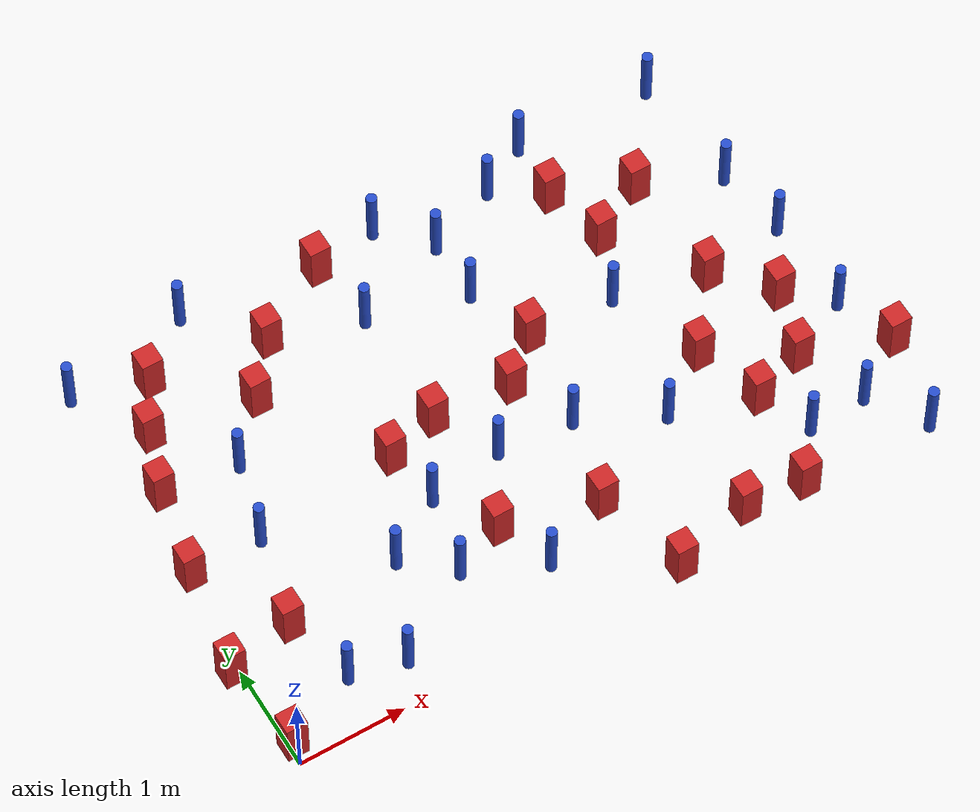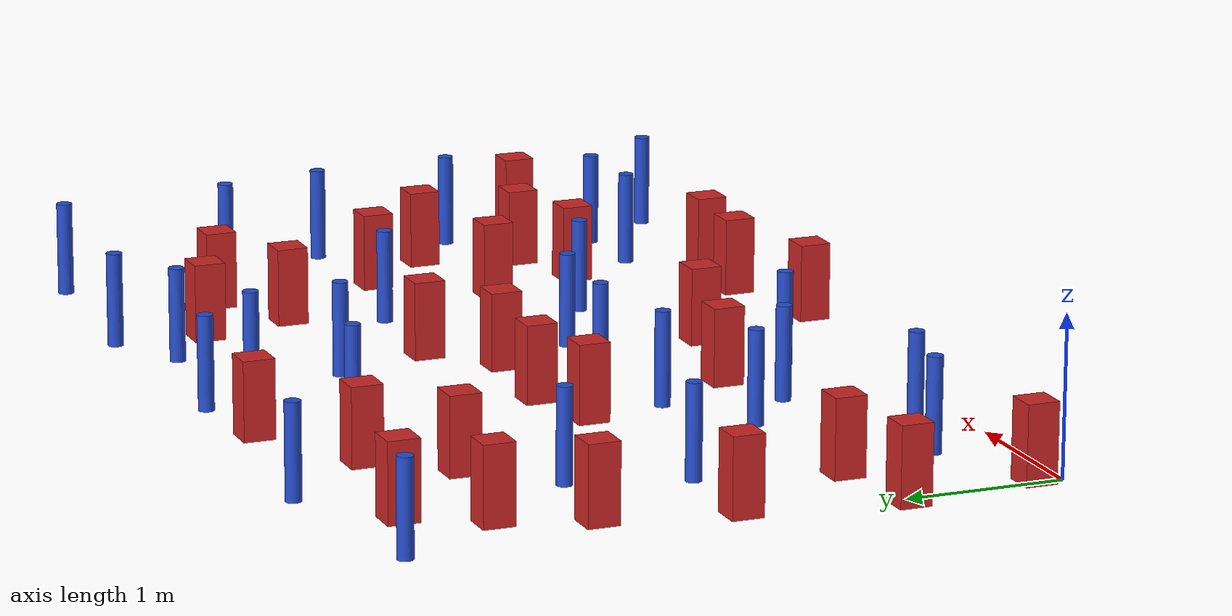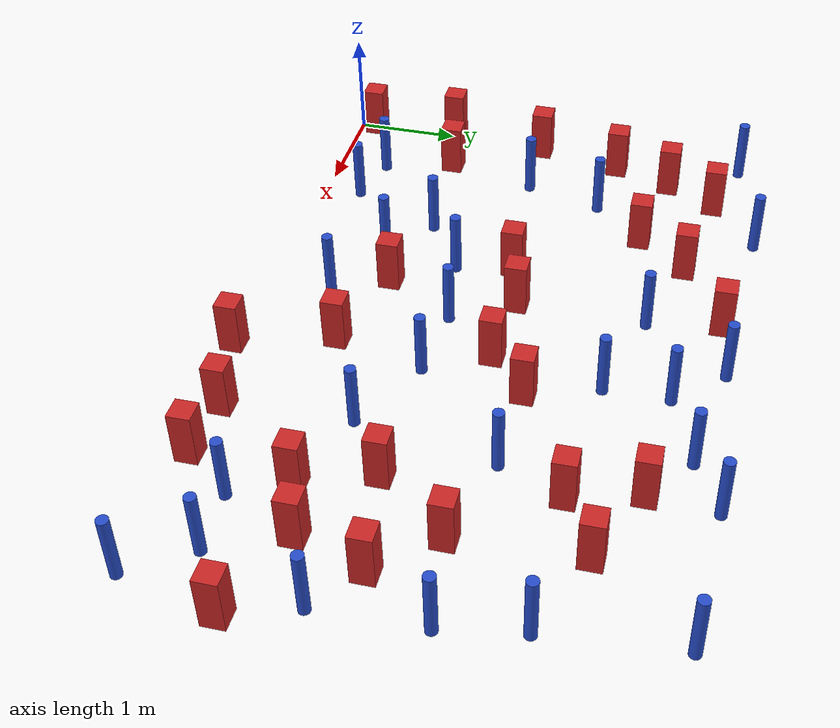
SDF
<sdf version="1.6">
 <model name="dense_49">
  <model name="square_post_obstacle2">
   <static>true</static>
   <pose>4.97843061873 0.0813036156033 1.91545236811e-07 -7.35059704564e-06 1.12565212e-07 2.39332434364e-05</pose>
   <link name="link">
    <pose>0 0 0.25 0 -0 0</pose>
    <inertial>
     <mass>100</mass>
     <inertia>
      <ixx>0.166667</ixx>
      <ixy>0</ixy>
      <ixz>0</ixz>
      <iyy>0.166667</iyy>
      <iyz>0</iyz>
      <izz>0.166667</izz>
     </inertia>
    </inertial>
    <collision name="collision"><geometry><box><size>.2 .2 .5</size></box></geometry></collision>
    <visual name="visual">
     <geometry><box><size>.2 .2 .5</size></box></geometry>
     <material>
      <script><name>Gazebo/Red</name><uri>file://media/materials/scripts/gazebo.material</uri></script>
     </material>
    </visual>
   </link>
  </model>
  <model name="square_post_obstacle5">
   <static>true</static>
   <pose>4.78544874691 3.06390255872 1.91545236811e-07 -7.35059704564e-06 1.12565212e-07 2.39332434364e-05</pose>
   <link name="link">
    <pose>0 0 0.25 0 -0 0</pose>
    <inertial>
     <mass>100</mass>
     <inertia>
      <ixx>0.166667</ixx>
      <ixy>0</ixy>
      <ixz>0</ixz>
      <iyy>0.166667</iyy>
      <iyz>0</iyz>
      <izz>0.166667</izz>
     </inertia>
    </inertial>
    <collision name="collision"><geometry><box><size>.2 .2 .5</size></box></geometry></collision>
    <visual name="visual">
     <geometry><box><size>.2 .2 .5</size></box></geometry>
     <material>
      <script><name>Gazebo/Red</name><uri>file://media/materials/scripts/gazebo.material</uri></script>
     </material>
    </visual>
   </link>
  </model>
  <model name="square_post_obstacle11">
   <static>true</static>
   <pose>4.62874711738 3.66737557755 1.91545236811e-07 -7.35059704564e-06 1.12565212e-07 2.39332434364e-05</pose>
   <link name="link">
    <pose>0 0 0.25 0 -0 0</pose>
    <inertial>
     <mass>100</mass>
     <inertia>
      <ixx>0.166667</ixx>
      <ixy>0</ixy>
      <ixz>0</ixz>
      <iyy>0.166667</iyy>
      <iyz>0</iyz>
      <izz>0.166667</izz>
     </inertia>
    </inertial>
    <collision name="collision"><geometry><box><size>.2 .2 .5</size></box></geometry></collision>
    <visual name="visual">
     <geometry><box><size>.2 .2 .5</size></box></geometry>
     <material>
      <script><name>Gazebo/Red</name><uri>file://media/materials/scripts/gazebo.material</uri></script>
     </material>
    </visual>
   </link>
  </model>
  <model name="square_post_obstacle13">
   <static>true</static>
   <pose>3.41197336241 0.803505202725 1.91545236811e-07 -7.35059704564e-06 1.12565212e-07 2.39332434364e-05</pose>
   <link name="link">
    <pose>0 0 0.25 0 -0 0</pose>
    <inertial>
     <mass>100</mass>
     <inertia>
      <ixx>0.166667</ixx>
      <ixy>0</ixy>
      <ixz>0</ixz>
      <iyy>0.166667</iyy>
      <iyz>0</iyz>
      <izz>0.166667</izz>
     </inertia>
    </inertial>
    <collision name="collision"><geometry><box><size>.2 .2 .5</size></box></geometry></collision>
    <visual name="visual">
     <geometry><box><size>.2 .2 .5</size></box></geometry>
     <material>
      <script><name>Gazebo/Red</name><uri>file://media/materials/scripts/gazebo.material</uri></script>
     </material>
    </visual>
   </link>
  </model>
  <model name="pole_obstacle9">
   <static>true</static>
   <pose>0.733993207891 0.471008192793 7.38925637345e-09 -8.471706928e-08 1.24976765086e-08 -1.74513093015e-07</pose>
   <link name="link">
    <pose>0 0 0.3 0 -0 0</pose>
    <inertial>
     <mass>1</mass>
     <inertia><ixx>0.145833</ixx><ixy>0</ixy><ixz>0</ixz><iyy>0.145833</iyy><iyz>0</iyz><izz>0.125</izz></inertia>
    </inertial>
    <collision name="collision">
     <geometry><cylinder><radius>0.05</radius><length>.6</length></cylinder></geometry>
    </collision>
    <visual name="visual">
     <geometry><cylinder><radius>0.05</radius><length>.6</length></cylinder></geometry>
     <material>
      <script><name>Gazebo/Blue</name><uri>file://media/materials/scripts/gazebo.material</uri></script>
     </material>
    </visual>
   </link>
  </model>
  <model name="pole_obstacle11">
   <static>true</static>
   <pose>4.66672874575 4.24998226761 7.38925637345e-09 -8.47170692796e-08 1.24976764786e-08 -1.74513093032e-07</pose>
   <link name="link">
    <pose>0 0 0.3 0 -0 0</pose>
    <inertial>
     <mass>1</mass>
     <inertia><ixx>0.145833</ixx><ixy>0</ixy><ixz>0</ixz><iyy>0.145833</iyy><iyz>0</iyz><izz>0.125</izz></inertia>
    </inertial>
    <collision name="collision">
     <geometry><cylinder><radius>0.05</radius><length>.6</length></cylinder></geometry>
    </collision>
    <visual name="visual">
     <geometry><cylinder><radius>0.05</radius><length>.6</length></cylinder></geometry>
     <material>
      <script><name>Gazebo/Blue</name><uri>file://media/materials/scripts/gazebo.material</uri></script>
     </material>
    </visual>
   </link>
  </model>
  <model name="pole_obstacle16">
   <static>true</static>
   <pose>5.32530784712 0.512092926045 7.38925637345e-09 -8.471706928e-08 1.24976765164e-08 -1.74513093012e-07</pose>
   <link name="link">
    <pose>0 0 0.3 0 -0 0</pose>
    <inertial>
     <mass>1</mass>
     <inertia><ixx>0.145833</ixx><ixy>0</ixy><ixz>0</ixz><iyy>0.145833</iyy><iyz>0</iyz><izz>0.125</izz></inertia>
    </inertial>
    <collision name="collision">
     <geometry><cylinder><radius>0.05</radius><length>.6</length></cylinder></geometry>
    </collision>
    <visual name="visual">
     <geometry><cylinder><radius>0.05</radius><length>.6</length></cylinder></geometry>
     <material>
      <script><name>Gazebo/Blue</name><uri>file://media/materials/scripts/gazebo.material</uri></script>
     </material>
    </visual>
   </link>
  </model>
  <model name="pole_obstacle32">
   <static>true</static>
   <pose>0.96854789514 2.70589181334 7.38925637345e-09 -8.47170692799e-08 1.24976765046e-08 -1.74513093018e-07</pose>
   <link name="link">
    <pose>0 0 0.3 0 -0 0</pose>
    <inertial>
     <mass>1</mass>
     <inertia><ixx>0.145833</ixx><ixy>0</ixy><ixz>0</ixz><iyy>0.145833</iyy><iyz>0</iyz><izz>0.125</izz></inertia>
    </inertial>
    <collision name="collision">
     <geometry><cylinder><radius>0.05</radius><length>.6</length></cylinder></geometry>
    </collision>
    <visual name="visual">
     <geometry><cylinder><radius>0.05</radius><length>.6</length></cylinder></geometry>
     <material>
      <script><name>Gazebo/Blue</name><uri>file://media/materials/scripts/gazebo.material</uri></script>
     </material>
    </visual>
   </link>
  </model>
  <model name="pole_obstacle43">
   <static>true</static>
   <pose>1.24174405037 0.346232820071 7.38925637345e-09 -8.47170692799e-08 1.24976765065e-08 -1.74513093017e-07</pose>
   <link name="link">
    <pose>0 0 0.3 0 -0 0</pose>
    <inertial>
     <mass>1</mass>
     <inertia><ixx>0.145833</ixx><ixy>0</ixy><ixz>0</ixz><iyy>0.145833</iyy><iyz>0</iyz><izz>0.125</izz></inertia>
    </inertial>
    <collision name="collision">
     <geometry><cylinder><radius>0.05</radius><length>.6</length></cylinder></geometry>
    </collision>
    <visual name="visual">
     <geometry><cylinder><radius>0.05</radius><length>.6</length></cylinder></geometry>
     <material>
      <script><name>Gazebo/Blue</name><uri>file://media/materials/scripts/gazebo.material</uri></script>
     </material>
    </visual>
   </link>
  </model>
  <model name="pole_obstacle45">
   <static>true</static>
   <pose>4.34522546068 1.24364782961 7.38925637345e-09 -8.471706928e-08 1.24976765134e-08 -1.74513093015e-07</pose>
   <link name="link">
    <pose>0 0 0.3 0 -0 0</pose>
    <inertial>
     <mass>1</mass>
     <inertia><ixx>0.145833</ixx><ixy>0</ixy><ixz>0</ixz><iyy>0.145833</iyy><iyz>0</iyz><izz>0.125</izz></inertia>
    </inertial>
    <collision name="collision">
     <geometry><cylinder><radius>0.05</radius><length>.6</length></cylinder></geometry>
    </collision>
    <visual name="visual">
     <geometry><cylinder><radius>0.05</radius><length>.6</length></cylinder></geometry>
     <material>
      <script><name>Gazebo/Blue</name><uri>file://media/materials/scripts/gazebo.material</uri></script>
     </material>
    </visual>
   </link>
  </model>
  <model name="pole_obstacle46">
   <static>true</static>
   <pose>3.12625341546 4.15890383499 7.38925637345e-09 -8.47170692798e-08 1.24976765033e-08 -1.74513093019e-07</pose>
   <link name="link">
    <pose>0 0 0.3 0 -0 0</pose>
    <inertial>
     <mass>1</mass>
     <inertia><ixx>0.145833</ixx><ixy>0</ixy><ixz>0</ixz><iyy>0.145833</iyy><iyz>0</iyz><izz>0.125</izz></inertia>
    </inertial>
    <collision name="collision">
     <geometry><cylinder><radius>0.05</radius><length>.6</length></cylinder></geometry>
    </collision>
    <visual name="visual">
     <geometry><cylinder><radius>0.05</radius><length>.6</length></cylinder></geometry>
     <material>
      <script><name>Gazebo/Blue</name><uri>file://media/materials/scripts/gazebo.material</uri></script>
     </material>
    </visual>
   </link>
  </model>
  <model name="pole_obstacle47">
   <static>true</static>
   <pose>5.8794570184 0.53590512169 7.38925637345e-09 -8.471706928e-08 1.24976765164e-08 -1.74513093012e-07</pose>
   <link name="link">
    <pose>0 0 0.3 0 -0 0</pose>
    <inertial>
     <mass>1</mass>
     <inertia><ixx>0.145833</ixx><ixy>0</ixy><ixz>0</ixz><iyy>0.145833</iyy><iyz>0</iyz><izz>0.125</izz></inertia>
    </inertial>
    <collision name="collision">
     <geometry><cylinder><radius>0.05</radius><length>.6</length></cylinder></geometry>
    </collision>
    <visual name="visual">
     <geometry><cylinder><radius>0.05</radius><length>.6</length></cylinder></geometry>
     <material>
      <script><name>Gazebo/Blue</name><uri>file://media/materials/scripts/gazebo.material</uri></script>
     </material>
    </visual>
   </link>
  </model>
  <model name="square_post_obstacle57">
   <static>true</static>
   <pose>6.40279987753 0.882276432792 1.91545236811e-07 -7.35059704564e-06 1.12565212e-07 2.39332434364e-05</pose>
   <link name="link">
    <pose>0 0 0.25 0 -0 0</pose>
    <inertial>
     <mass>100</mass>
     <inertia>
      <ixx>0.166667</ixx>
      <ixy>0</ixy>
      <ixz>0</ixz>
      <iyy>0.166667</iyy>
      <iyz>0</iyz>
      <izz>0.166667</izz>
     </inertia>
    </inertial>
    <collision name="collision"><geometry><box><size>.2 .2 .5</size></box></geometry></collision>
    <visual name="visual">
     <geometry><box><size>.2 .2 .5</size></box></geometry>
     <material>
      <script><name>Gazebo/Red</name><uri>file://media/materials/scripts/gazebo.material</uri></script>
     </material>
    </visual>
   </link>
  </model>
  <model name="square_post_obstacle59">
   <static>true</static>
   <pose>1.40726004822 3.18187855667 1.91545236811e-07 -7.35059704564e-06 1.12565212e-07 2.39332434364e-05</pose>
   <link name="link">
    <pose>0 0 0.25 0 -0 0</pose>
    <inertial>
     <mass>100</mass>
     <inertia>
      <ixx>0.166667</ixx>
      <ixy>0</ixy>
      <ixz>0</ixz>
      <iyy>0.166667</iyy>
      <iyz>0</iyz>
      <izz>0.166667</izz>
     </inertia>
    </inertial>
    <collision name="collision"><geometry><box><size>.2 .2 .5</size></box></geometry></collision>
    <visual name="visual">
     <geometry><box><size>.2 .2 .5</size></box></geometry>
     <material>
      <script><name>Gazebo/Red</name><uri>file://media/materials/scripts/gazebo.material</uri></script>
     </material>
    </visual>
   </link>
  </model>
  <model name="square_post_obstacle60">
   <static>true</static>
   <pose>0.550611374416 1.1368420796 1.91545236811e-07 -7.35059704564e-06 1.12565212e-07 2.39332434364e-05</pose>
   <link name="link">
    <pose>0 0 0.25 0 -0 0</pose>
    <inertial>
     <mass>100</mass>
     <inertia>
      <ixx>0.166667</ixx>
      <ixy>0</ixy>
      <ixz>0</ixz>
      <iyy>0.166667</iyy>
      <iyz>0</iyz>
      <izz>0.166667</izz>
     </inertia>
    </inertial>
    <collision name="collision"><geometry><box><size>.2 .2 .5</size></box></geometry></collision>
    <visual name="visual">
     <geometry><box><size>.2 .2 .5</size></box></geometry>
     <material>
      <script><name>Gazebo/Red</name><uri>file://media/materials/scripts/gazebo.material</uri></script>
     </material>
    </visual>
   </link>
  </model>
  <model name="pole_obstacle67">
   <static>true</static>
   <pose>2.91690028277 1.68336641043 7.38925637345e-09 -8.471706928e-08 1.24976765152e-08 -1.74513093012e-07</pose>
   <link name="link">
    <pose>0 0 0.3 0 -0 0</pose>
    <inertial>
     <mass>1</mass>
     <inertia><ixx>0.145833</ixx><ixy>0</ixy><ixz>0</ixz><iyy>0.145833</iyy><iyz>0</iyz><izz>0.125</izz></inertia>
    </inertial>
    <collision name="collision">
     <geometry><cylinder><radius>0.05</radius><length>.6</length></cylinder></geometry>
    </collision>
    <visual name="visual">
     <geometry><cylinder><radius>0.05</radius><length>.6</length></cylinder></geometry>
     <material>
      <script><name>Gazebo/Blue</name><uri>file://media/materials/scripts/gazebo.material</uri></script>
     </material>
    </visual>
   </link>
  </model>
  <model name="pole_obstacle74">
   <static>true</static>
   <pose>3.52438051073 3.15807907708 7.38925637345e-09 -8.47170692798e-08 1.24976764939e-08 -1.74513093025e-07</pose>
   <link name="link">
    <pose>0 0 0.3 0 -0 0</pose>
    <inertial>
     <mass>1</mass>
     <inertia><ixx>0.145833</ixx><ixy>0</ixy><ixz>0</ixz><iyy>0.145833</iyy><iyz>0</iyz><izz>0.125</izz></inertia>
    </inertial>
    <collision name="collision">
     <geometry><cylinder><radius>0.05</radius><length>.6</length></cylinder></geometry>
    </collision>
    <visual name="visual">
     <geometry><cylinder><radius>0.05</radius><length>.6</length></cylinder></geometry>
     <material>
      <script><name>Gazebo/Blue</name><uri>file://media/materials/scripts/gazebo.material</uri></script>
     </material>
    </visual>
   </link>
  </model>
  <model name="square_post_obstacle77">
   <static>true</static>
   <pose>2.52377187279 1.03569230565 1.91545236811e-07 -7.35059704564e-06 1.12565212e-07 2.39332434364e-05</pose>
   <link name="link">
    <pose>0 0 0.25 0 -0 0</pose>
    <inertial>
     <mass>100</mass>
     <inertia>
      <ixx>0.166667</ixx>
      <ixy>0</ixy>
      <ixz>0</ixz>
      <iyy>0.166667</iyy>
      <iyz>0</iyz>
      <izz>0.166667</izz>
     </inertia>
    </inertial>
    <collision name="collision"><geometry><box><size>.2 .2 .5</size></box></geometry></collision>
    <visual name="visual">
     <geometry><box><size>.2 .2 .5</size></box></geometry>
     <material>
      <script><name>Gazebo/Red</name><uri>file://media/materials/scripts/gazebo.material</uri></script>
     </material>
    </visual>
   </link>
  </model>
  <model name="pole_obstacle79">
   <static>true</static>
   <pose>4.55651429167 2.49267676649 7.38925637345e-09 -8.47170692798e-08 1.24976764937e-08 -1.74513093023e-07</pose>
   <link name="link">
    <pose>0 0 0.3 0 -0 0</pose>
    <inertial>
     <mass>1</mass>
     <inertia><ixx>0.145833</ixx><ixy>0</ixy><ixz>0</ixz><iyy>0.145833</iyy><iyz>0</iyz><izz>0.125</izz></inertia>
    </inertial>
    <collision name="collision">
     <geometry><cylinder><radius>0.05</radius><length>.6</length></cylinder></geometry>
    </collision>
    <visual name="visual">
     <geometry><cylinder><radius>0.05</radius><length>.6</length></cylinder></geometry>
     <material>
      <script><name>Gazebo/Blue</name><uri>file://media/materials/scripts/gazebo.material</uri></script>
     </material>
    </visual>
   </link>
  </model>
  <model name="square_post_obstacle80">
   <static>true</static>
   <pose>0.714723443884 3.81570896859 1.91545236811e-07 -7.35059704564e-06 1.12565212e-07 2.39332434364e-05</pose>
   <link name="link">
    <pose>0 0 0.25 0 -0 0</pose>
    <inertial>
     <mass>100</mass>
     <inertia>
      <ixx>0.166667</ixx>
      <ixy>0</ixy>
      <ixz>0</ixz>
      <iyy>0.166667</iyy>
      <iyz>0</iyz>
      <izz>0.166667</izz>
     </inertia>
    </inertial>
    <collision name="collision"><geometry><box><size>.2 .2 .5</size></box></geometry></collision>
    <visual name="visual">
     <geometry><box><size>.2 .2 .5</size></box></geometry>
     <material>
      <script><name>Gazebo/Red</name><uri>file://media/materials/scripts/gazebo.material</uri></script>
     </material>
    </visual>
   </link>
  </model>
  <model name="pole_obstacle86">
   <static>true</static>
   <pose>2.04235354189 0.846041171728 7.38925637345e-09 -8.471706928e-08 1.24976765139e-08 -1.74513093014e-07</pose>
   <link name="link">
    <pose>0 0 0.3 0 -0 0</pose>
    <inertial>
     <mass>1</mass>
     <inertia><ixx>0.145833</ixx><ixy>0</ixy><ixz>0</ixz><iyy>0.145833</iyy><iyz>0</iyz><izz>0.125</izz></inertia>
    </inertial>
    <collision name="collision">
     <geometry><cylinder><radius>0.05</radius><length>.6</length></cylinder></geometry>
    </collision>
    <visual name="visual">
     <geometry><cylinder><radius>0.05</radius><length>.6</length></cylinder></geometry>
     <material>
      <script><name>Gazebo/Blue</name><uri>file://media/materials/scripts/gazebo.material</uri></script>
     </material>
    </visual>
   </link>
  </model>
  <model name="pole_obstacle90">
   <static>true</static>
   <pose>1.63271304065 1.21056926567 7.38925637345e-09 -8.471706928e-08 1.24976765079e-08 -1.74513093017e-07</pose>
   <link name="link">
    <pose>0 0 0.3 0 -0 0</pose>
    <inertial>
     <mass>1</mass>
     <inertia><ixx>0.145833</ixx><ixy>0</ixy><ixz>0</ixz><iyy>0.145833</iyy><iyz>0</iyz><izz>0.125</izz></inertia>
    </inertial>
    <collision name="collision">
     <geometry><cylinder><radius>0.05</radius><length>.6</length></cylinder></geometry>
    </collision>
    <visual name="visual">
     <geometry><cylinder><radius>0.05</radius><length>.6</length></cylinder></geometry>
     <material>
      <script><name>Gazebo/Blue</name><uri>file://media/materials/scripts/gazebo.material</uri></script>
     </material>
    </visual>
   </link>
  </model>
  <model name="pole_obstacle93">
   <static>true</static>
   <pose>1.2547524337 4.25324755997 7.38925637345e-09 -8.47170692799e-08 1.24976765033e-08 -1.74513093018e-07</pose>
   <link name="link">
    <pose>0 0 0.3 0 -0 0</pose>
    <inertial>
     <mass>1</mass>
     <inertia><ixx>0.145833</ixx><ixy>0</ixy><ixz>0</ixz><iyy>0.145833</iyy><iyz>0</iyz><izz>0.125</izz></inertia>
    </inertial>
    <collision name="collision">
     <geometry><cylinder><radius>0.05</radius><length>.6</length></cylinder></geometry>
    </collision>
    <visual name="visual">
     <geometry><cylinder><radius>0.05</radius><length>.6</length></cylinder></geometry>
     <material>
      <script><name>Gazebo/Blue</name><uri>file://media/materials/scripts/gazebo.material</uri></script>
     </material>
    </visual>
   </link>
  </model>
  <model name="square_post_obstacle84">
   <static>true</static>
   <pose>4.885762861 1.62590233051 1.91545236811e-07 -7.35059704564e-06 1.12565212e-07 2.39332434364e-05</pose>
   <link name="link">
    <pose>0 0 0.25 0 -0 0</pose>
    <inertial>
     <mass>100</mass>
     <inertia>
      <ixx>0.166667</ixx>
      <ixy>0</ixy>
      <ixz>0</ixz>
      <iyy>0.166667</iyy>
      <iyz>0</iyz>
      <izz>0.166667</izz>
     </inertia>
    </inertial>
    <collision name="collision"><geometry><box><size>.2 .2 .5</size></box></geometry></collision>
    <visual name="visual">
     <geometry><box><size>.2 .2 .5</size></box></geometry>
     <material>
      <script><name>Gazebo/Red</name><uri>file://media/materials/scripts/gazebo.material</uri></script>
     </material>
    </visual>
   </link>
  </model>
  <model name="square_post_obstacle89">
   <static>true</static>
   <pose>4.41641915639 0.129336557298 1.91545236811e-07 -7.35059704564e-06 1.12565212e-07 2.39332434364e-05</pose>
   <link name="link">
    <pose>0 0 0.25 0 -0 0</pose>
    <inertial>
     <mass>100</mass>
     <inertia>
      <ixx>0.166667</ixx>
      <ixy>0</ixy>
      <ixz>0</ixz>
      <iyy>0.166667</iyy>
      <iyz>0</iyz>
      <izz>0.166667</izz>
     </inertia>
    </inertial>
    <collision name="collision"><geometry><box><size>.2 .2 .5</size></box></geometry></collision>
    <visual name="visual">
     <geometry><box><size>.2 .2 .5</size></box></geometry>
     <material>
      <script><name>Gazebo/Red</name><uri>file://media/materials/scripts/gazebo.material</uri></script>
     </material>
    </visual>
   </link>
  </model>
  <model name="pole_obstacle110">
   <static>true</static>
   <pose>0.050401922978 4.01981426665 7.38925637345e-09 -8.47170692799e-08 1.24976765e-08 -1.74513093021e-07</pose>
   <link name="link">
    <pose>0 0 0.3 0 -0 0</pose>
    <inertial>
     <mass>1</mass>
     <inertia><ixx>0.145833</ixx><ixy>0</ixy><ixz>0</ixz><iyy>0.145833</iyy><iyz>0</iyz><izz>0.125</izz></inertia>
    </inertial>
    <collision name="collision">
     <geometry><cylinder><radius>0.05</radius><length>.6</length></cylinder></geometry>
    </collision>
    <visual name="visual">
     <geometry><cylinder><radius>0.05</radius><length>.6</length></cylinder></geometry>
     <material>
      <script><name>Gazebo/Blue</name><uri>file://media/materials/scripts/gazebo.material</uri></script>
     </material>
    </visual>
   </link>
  </model>
  <model name="pole_obstacle115">
   <static>true</static>
   <pose>0.764776637621 1.98578209945 7.38925637345e-09 -8.47170692799e-08 1.24976765066e-08 -1.74513093016e-07</pose>
   <link name="link">
    <pose>0 0 0.3 0 -0 0</pose>
    <inertial>
     <mass>1</mass>
     <inertia><ixx>0.145833</ixx><ixy>0</ixy><ixz>0</ixz><iyy>0.145833</iyy><iyz>0</iyz><izz>0.125</izz></inertia>
    </inertial>
    <collision name="collision">
     <geometry><cylinder><radius>0.05</radius><length>.6</length></cylinder></geometry>
    </collision>
    <visual name="visual">
     <geometry><cylinder><radius>0.05</radius><length>.6</length></cylinder></geometry>
     <material>
      <script><name>Gazebo/Blue</name><uri>file://media/materials/scripts/gazebo.material</uri></script>
     </material>
    </visual>
   </link>
  </model>
  <model name="square_post_obstacle108">
   <static>true</static>
   <pose>1.77909898433 3.64906854002 1.91545236811e-07 -7.35059704564e-06 1.12565212e-07 2.39332434364e-05</pose>
   <link name="link">
    <pose>0 0 0.25 0 -0 0</pose>
    <inertial>
     <mass>100</mass>
     <inertia>
      <ixx>0.166667</ixx>
      <ixy>0</ixy>
      <ixz>0</ixz>
      <iyy>0.166667</iyy>
      <iyz>0</iyz>
      <izz>0.166667</izz>
     </inertia>
    </inertial>
    <collision name="collision"><geometry><box><size>.2 .2 .5</size></box></geometry></collision>
    <visual name="visual">
     <geometry><box><size>.2 .2 .5</size></box></geometry>
     <material>
      <script><name>Gazebo/Red</name><uri>file://media/materials/scripts/gazebo.material</uri></script>
     </material>
    </visual>
   </link>
  </model>
  <model name="square_post_obstacle110">
   <static>true</static>
   <pose>5.3174819855 3.363539042 1.91545236811e-07 -7.35059704564e-06 1.12565212e-07 2.39332434364e-05</pose>
   <link name="link">
    <pose>0 0 0.25 0 -0 0</pose>
    <inertial>
     <mass>100</mass>
     <inertia>
      <ixx>0.166667</ixx>
      <ixy>0</ixy>
      <ixz>0</ixz>
      <iyy>0.166667</iyy>
      <iyz>0</iyz>
      <izz>0.166667</izz>
     </inertia>
    </inertial>
    <collision name="collision"><geometry><box><size>.2 .2 .5</size></box></geometry></collision>
    <visual name="visual">
     <geometry><box><size>.2 .2 .5</size></box></geometry>
     <material>
      <script><name>Gazebo/Red</name><uri>file://media/materials/scripts/gazebo.material</uri></script>
     </material>
    </visual>
   </link>
  </model>
  <model name="square_post_obstacle111">
   <static>true</static>
   <pose>3.66208074283 -0.061306846736 1.91545236811e-07 -7.35059704564e-06 1.12565212e-07 2.39332434364e-05</pose>
   <link name="link">
    <pose>0 0 0.25 0 -0 0</pose>
    <inertial>
     <mass>100</mass>
     <inertia>
      <ixx>0.166667</ixx>
      <ixy>0</ixy>
      <ixz>0</ixz>
      <iyy>0.166667</iyy>
      <iyz>0</iyz>
      <izz>0.166667</izz>
     </inertia>
    </inertial>
    <collision name="collision"><geometry><box><size>.2 .2 .5</size></box></geometry></collision>
    <visual name="visual">
     <geometry><box><size>.2 .2 .5</size></box></geometry>
     <material>
      <script><name>Gazebo/Red</name><uri>file://media/materials/scripts/gazebo.material</uri></script>
     </material>
    </visual>
   </link>
  </model>
  <model name="pole_obstacle122">
   <static>true</static>
   <pose>3.52186709226 3.73721494103 7.38925637345e-09 -8.47170692798e-08 1.24976764939e-08 -1.74513093025e-07</pose>
   <link name="link">
    <pose>0 0 0.3 0 -0 0</pose>
    <inertial>
     <mass>1</mass>
     <inertia><ixx>0.145833</ixx><ixy>0</ixy><ixz>0</ixz><iyy>0.145833</iyy><iyz>0</iyz><izz>0.125</izz></inertia>
    </inertial>
    <collision name="collision">
     <geometry><cylinder><radius>0.05</radius><length>.6</length></cylinder></geometry>
    </collision>
    <visual name="visual">
     <geometry><cylinder><radius>0.05</radius><length>.6</length></cylinder></geometry>
     <material>
      <script><name>Gazebo/Blue</name><uri>file://media/materials/scripts/gazebo.material</uri></script>
     </material>
    </visual>
   </link>
  </model>
  <model name="pole_obstacle125">
   <static>true</static>
   <pose>5.95000407138 4.18772665111 7.38925637345e-09 -8.47170692796e-08 1.24976764786e-08 -1.74513093032e-07</pose>
   <link name="link">
    <pose>0 0 0.3 0 -0 0</pose>
    <inertial>
     <mass>1</mass>
     <inertia><ixx>0.145833</ixx><ixy>0</ixy><ixz>0</ixz><iyy>0.145833</iyy><iyz>0</iyz><izz>0.125</izz></inertia>
    </inertial>
    <collision name="collision">
     <geometry><cylinder><radius>0.05</radius><length>.6</length></cylinder></geometry>
    </collision>
    <visual name="visual">
     <geometry><cylinder><radius>0.05</radius><length>.6</length></cylinder></geometry>
     <material>
      <script><name>Gazebo/Blue</name><uri>file://media/materials/scripts/gazebo.material</uri></script>
     </material>
    </visual>
   </link>
  </model>
  <model name="square_post_obstacle115">
   <static>true</static>
   <pose>0.45429999532 3.34309313988 1.91545236811e-07 -7.35059704564e-06 1.12565212e-07 2.39332434364e-05</pose>
   <link name="link">
    <pose>0 0 0.25 0 -0 0</pose>
    <inertial>
     <mass>100</mass>
     <inertia>
      <ixx>0.166667</ixx>
      <ixy>0</ixy>
      <ixz>0</ixz>
      <iyy>0.166667</iyy>
      <iyz>0</iyz>
      <izz>0.166667</izz>
     </inertia>
    </inertial>
    <collision name="collision"><geometry><box><size>.2 .2 .5</size></box></geometry></collision>
    <visual name="visual">
     <geometry><box><size>.2 .2 .5</size></box></geometry>
     <material>
      <script><name>Gazebo/Red</name><uri>file://media/materials/scripts/gazebo.material</uri></script>
     </material>
    </visual>
   </link>
  </model>
  <model name="square_post_obstacle120">
   <static>true</static>
   <pose>2.09988776933 2.09452551395 1.91545236811e-07 -7.35059704564e-06 1.12565212e-07 2.39332434364e-05</pose>
   <link name="link">
    <pose>0 0 0.25 0 -0 0</pose>
    <inertial>
     <mass>100</mass>
     <inertia>
      <ixx>0.166667</ixx>
      <ixy>0</ixy>
      <ixz>0</ixz>
      <iyy>0.166667</iyy>
      <iyz>0</iyz>
      <izz>0.166667</izz>
     </inertia>
    </inertial>
    <collision name="collision"><geometry><box><size>.2 .2 .5</size></box></geometry></collision>
    <visual name="visual">
     <geometry><box><size>.2 .2 .5</size></box></geometry>
     <material>
      <script><name>Gazebo/Red</name><uri>file://media/materials/scripts/gazebo.material</uri></script>
     </material>
    </visual>
   </link>
  </model>
  <model name="square_post_obstacle122">
   <static>true</static>
   <pose>5.80551034819 1.7900023004 1.91545236811e-07 -7.35059704564e-06 1.12565212e-07 2.39332434364e-05</pose>
   <link name="link">
    <pose>0 0 0.25 0 -0 0</pose>
    <inertial>
     <mass>100</mass>
     <inertia>
      <ixx>0.166667</ixx>
      <ixy>0</ixy>
      <ixz>0</ixz>
      <iyy>0.166667</iyy>
      <iyz>0</iyz>
      <izz>0.166667</izz>
     </inertia>
    </inertial>
    <collision name="collision"><geometry><box><size>.2 .2 .5</size></box></geometry></collision>
    <visual name="visual">
     <geometry><box><size>.2 .2 .5</size></box></geometry>
     <material>
      <script><name>Gazebo/Red</name><uri>file://media/materials/scripts/gazebo.material</uri></script>
     </material>
    </visual>
   </link>
  </model>
  <model name="pole_obstacle141">
   <static>true</static>
   <pose>6.21714708653 0.0231603762107 7.38925637345e-09 -8.47170692801e-08 1.24976765199e-08 -1.74513093011e-07</pose>
   <link name="link">
    <pose>0 0 0.3 0 -0 0</pose>
    <inertial>
     <mass>1</mass>
     <inertia><ixx>0.145833</ixx><ixy>0</ixy><ixz>0</ixz><iyy>0.145833</iyy><iyz>0</iyz><izz>0.125</izz></inertia>
    </inertial>
    <collision name="collision">
     <geometry><cylinder><radius>0.05</radius><length>.6</length></cylinder></geometry>
    </collision>
    <visual name="visual">
     <geometry><cylinder><radius>0.05</radius><length>.6</length></cylinder></geometry>
     <material>
      <script><name>Gazebo/Blue</name><uri>file://media/materials/scripts/gazebo.material</uri></script>
     </material>
    </visual>
   </link>
  </model>
  <model name="square_post_obstacle131">
   <static>true</static>
   <pose>-0.0726507445526 1.01381869304 1.91545236811e-07 -7.35059704564e-06 1.12565212e-07 2.39332434364e-05</pose>
   <link name="link">
    <pose>0 0 0.25 0 -0 0</pose>
    <inertial>
     <mass>100</mass>
     <inertia>
      <ixx>0.166667</ixx>
      <ixy>0</ixy>
      <ixz>0</ixz>
      <iyy>0.166667</iyy>
      <iyz>0</iyz>
      <izz>0.166667</izz>
     </inertia>
    </inertial>
    <collision name="collision"><geometry><box><size>.2 .2 .5</size></box></geometry></collision>
    <visual name="visual">
     <geometry><box><size>.2 .2 .5</size></box></geometry>
     <material>
      <script><name>Gazebo/Red</name><uri>file://media/materials/scripts/gazebo.material</uri></script>
     </material>
    </visual>
   </link>
  </model>
  <model name="square_post_obstacle133">
   <static>true</static>
   <pose>5.38206461041 2.26986010762 1.91545236811e-07 -7.35059704564e-06 1.12565212e-07 2.39332434364e-05</pose>
   <link name="link">
    <pose>0 0 0.25 0 -0 0</pose>
    <inertial>
     <mass>100</mass>
     <inertia>
      <ixx>0.166667</ixx>
      <ixy>0</ixy>
      <ixz>0</ixz>
      <iyy>0.166667</iyy>
      <iyz>0</iyz>
      <izz>0.166667</izz>
     </inertia>
    </inertial>
    <collision name="collision"><geometry><box><size>.2 .2 .5</size></box></geometry></collision>
    <visual name="visual">
     <geometry><box><size>.2 .2 .5</size></box></geometry>
     <material>
      <script><name>Gazebo/Red</name><uri>file://media/materials/scripts/gazebo.material</uri></script>
     </material>
    </visual>
   </link>
  </model>
  <model name="square_post_obstacle134">
   <static>true</static>
   <pose>3.73972532683 2.52781359436 1.91545236811e-07 -7.35059704564e-06 1.12565212e-07 2.39332434364e-05</pose>
   <link name="link">
    <pose>0 0 0.25 0 -0 0</pose>
    <inertial>
     <mass>100</mass>
     <inertia>
      <ixx>0.166667</ixx>
      <ixy>0</ixy>
      <ixz>0</ixz>
      <iyy>0.166667</iyy>
      <iyz>0</iyz>
      <izz>0.166667</izz>
     </inertia>
    </inertial>
    <collision name="collision"><geometry><box><size>.2 .2 .5</size></box></geometry></collision>
    <visual name="visual">
     <geometry><box><size>.2 .2 .5</size></box></geometry>
     <material>
      <script><name>Gazebo/Red</name><uri>file://media/materials/scripts/gazebo.material</uri></script>
     </material>
    </visual>
   </link>
  </model>
  <model name="pole_obstacle145">
   <static>true</static>
   <pose>6.20502207289 1.45493833761 7.38925637345e-09 -8.471706928e-08 1.24976765134e-08 -1.74513093015e-07</pose>
   <link name="link">
    <pose>0 0 0.3 0 -0 0</pose>
    <inertial>
     <mass>1</mass>
     <inertia><ixx>0.145833</ixx><ixy>0</ixy><ixz>0</ixz><iyy>0.145833</iyy><iyz>0</iyz><izz>0.125</izz></inertia>
    </inertial>
    <collision name="collision">
     <geometry><cylinder><radius>0.05</radius><length>.6</length></cylinder></geometry>
    </collision>
    <visual name="visual">
     <geometry><cylinder><radius>0.05</radius><length>.6</length></cylinder></geometry>
     <material>
      <script><name>Gazebo/Blue</name><uri>file://media/materials/scripts/gazebo.material</uri></script>
     </material>
    </visual>
   </link>
  </model>
  <model name="square_post_obstacle141">
   <static>true</static>
   <pose>0.0869611090962 1.98392740131 1.91545236811e-07 -7.35059704564e-06 1.12565212e-07 2.39332434364e-05</pose>
   <link name="link">
    <pose>0 0 0.25 0 -0 0</pose>
    <inertial>
     <mass>100</mass>
     <inertia>
      <ixx>0.166667</ixx>
      <ixy>0</ixy>
      <ixz>0</ixz>
      <iyy>0.166667</iyy>
      <iyz>0</iyz>
      <izz>0.166667</izz>
     </inertia>
    </inertial>
    <collision name="collision"><geometry><box><size>.2 .2 .5</size></box></geometry></collision>
    <visual name="visual">
     <geometry><box><size>.2 .2 .5</size></box></geometry>
     <material>
      <script><name>Gazebo/Red</name><uri>file://media/materials/scripts/gazebo.material</uri></script>
     </material>
    </visual>
   </link>
  </model>
  <model name="square_post_obstacle143">
   <static>true</static>
   <pose>2.5057814995 4.06292753954 1.91545236811e-07 -7.35059704564e-06 1.12565212e-07 2.39332434364e-05</pose>
   <link name="link">
    <pose>0 0 0.25 0 -0 0</pose>
    <inertial>
     <mass>100</mass>
     <inertia>
      <ixx>0.166667</ixx>
      <ixy>0</ixy>
      <ixz>0</ixz>
      <iyy>0.166667</iyy>
      <iyz>0</iyz>
      <izz>0.166667</izz>
     </inertia>
    </inertial>
    <collision name="collision"><geometry><box><size>.2 .2 .5</size></box></geometry></collision>
    <visual name="visual">
     <geometry><box><size>.2 .2 .5</size></box></geometry>
     <material>
      <script><name>Gazebo/Red</name><uri>file://media/materials/scripts/gazebo.material</uri></script>
     </material>
    </visual>
   </link>
  </model>
  <model name="pole_obstacle156">
   <static>true</static>
   <pose>6.17232067592 2.37460427916 7.38925637345e-09 -8.47170692798e-08 1.24976764937e-08 -1.74513093023e-07</pose>
   <link name="link">
    <pose>0 0 0.3 0 -0 0</pose>
    <inertial>
     <mass>1</mass>
     <inertia><ixx>0.145833</ixx><ixy>0</ixy><ixz>0</ixz><iyy>0.145833</iyy><iyz>0</iyz><izz>0.125</izz></inertia>
    </inertial>
    <collision name="collision">
     <geometry><cylinder><radius>0.05</radius><length>.6</length></cylinder></geometry>
    </collision>
    <visual name="visual">
     <geometry><cylinder><radius>0.05</radius><length>.6</length></cylinder></geometry>
     <material>
      <script><name>Gazebo/Blue</name><uri>file://media/materials/scripts/gazebo.material</uri></script>
     </material>
    </visual>
   </link>
  </model>
  <model name="pole_obstacle158">
   <static>true</static>
   <pose>6.0545215018 3.05642088528 7.38925637345e-09 -8.47170692798e-08 1.24976764937e-08 -1.74513093023e-07</pose>
   <link name="link">
    <pose>0 0 0.3 0 -0 0</pose>
    <inertial>
     <mass>1</mass>
     <inertia><ixx>0.145833</ixx><ixy>0</ixy><ixz>0</ixz><iyy>0.145833</iyy><iyz>0</iyz><izz>0.125</izz></inertia>
    </inertial>
    <collision name="collision">
     <geometry><cylinder><radius>0.05</radius><length>.6</length></cylinder></geometry>
    </collision>
    <visual name="visual">
     <geometry><cylinder><radius>0.05</radius><length>.6</length></cylinder></geometry>
     <material>
      <script><name>Gazebo/Blue</name><uri>file://media/materials/scripts/gazebo.material</uri></script>
     </material>
    </visual>
   </link>
  </model>
  <model name="pole_obstacle161">
   <static>true</static>
   <pose>2.61265467343 3.40513679091 7.38925637345e-09 -8.47170692798e-08 1.24976764939e-08 -1.74513093025e-07</pose>
   <link name="link">
    <pose>0 0 0.3 0 -0 0</pose>
    <inertial>
     <mass>1</mass>
     <inertia><ixx>0.145833</ixx><ixy>0</ixy><ixz>0</ixz><iyy>0.145833</iyy><iyz>0</iyz><izz>0.125</izz></inertia>
    </inertial>
    <collision name="collision">
     <geometry><cylinder><radius>0.05</radius><length>.6</length></cylinder></geometry>
    </collision>
    <visual name="visual">
     <geometry><cylinder><radius>0.05</radius><length>.6</length></cylinder></geometry>
     <material>
      <script><name>Gazebo/Blue</name><uri>file://media/materials/scripts/gazebo.material</uri></script>
     </material>
    </visual>
   </link>
  </model>
  <model name="square_post_obstacle163">
   <static>true</static>
   <pose>2.59728123891 2.23319288615 1.91545236811e-07 -7.35059704564e-06 1.12565212e-07 2.39332434364e-05</pose>
   <link name="link">
    <pose>0 0 0.25 0 -0 0</pose>
    <inertial>
     <mass>100</mass>
     <inertia>
      <ixx>0.166667</ixx>
      <ixy>0</ixy>
      <ixz>0</ixz>
      <iyy>0.166667</iyy>
      <iyz>0</iyz>
      <izz>0.166667</izz>
     </inertia>
    </inertial>
    <collision name="collision"><geometry><box><size>.2 .2 .5</size></box></geometry></collision>
    <visual name="visual">
     <geometry><box><size>.2 .2 .5</size></box></geometry>
     <material>
      <script><name>Gazebo/Red</name><uri>file://media/materials/scripts/gazebo.material</uri></script>
     </material>
    </visual>
   </link>
  </model>
  <model name="pole_obstacle182">
   <static>true</static>
   <pose>4.19428142791 3.99405677166 7.38925637345e-09 -8.47170692798e-08 1.2497676496e-08 -1.74513093023e-07</pose>
   <link name="link">
    <pose>0 0 0.3 0 -0 0</pose>
    <inertial>
     <mass>1</mass>
     <inertia><ixx>0.145833</ixx><ixy>0</ixy><ixz>0</ixz><iyy>0.145833</iyy><iyz>0</iyz><izz>0.125</izz></inertia>
    </inertial>
    <collision name="collision">
     <geometry><cylinder><radius>0.05</radius><length>.6</length></cylinder></geometry>
    </collision>
    <visual name="visual">
     <geometry><cylinder><radius>0.05</radius><length>.6</length></cylinder></geometry>
     <material>
      <script><name>Gazebo/Blue</name><uri>file://media/materials/scripts/gazebo.material</uri></script>
     </material>
    </visual>
   </link>
  </model>
  <model name="square_post_obstacle181">
   <static>true</static>
   <pose>3.33689042522 2.17345991507 1.91545236811e-07 -7.35059704564e-06 1.12565212e-07 2.39332434364e-05</pose>
   <link name="link">
    <pose>0 0 0.25 0 -0 0</pose>
    <inertial>
     <mass>100</mass>
     <inertia>
      <ixx>0.166667</ixx>
      <ixy>0</ixy>
      <ixz>0</ixz>
      <iyy>0.166667</iyy>
      <iyz>0</iyz>
      <izz>0.166667</izz>
     </inertia>
    </inertial>
    <collision name="collision"><geometry><box><size>.2 .2 .5</size></box></geometry></collision>
    <visual name="visual">
     <geometry><box><size>.2 .2 .5</size></box></geometry>
     <material>
      <script><name>Gazebo/Red</name><uri>file://media/materials/scripts/gazebo.material</uri></script>
     </material>
    </visual>
   </link>
  </model>
  <model name="square_post_obstacle186">
   <static>true</static>
   <pose>0.0299252185631 0.167007244359 1.91545236811e-07 -7.35059704564e-06 1.12565212e-07 2.39332434364e-05</pose>
   <link name="link">
    <pose>0 0 0.25 0 -0 0</pose>
    <inertial>
     <mass>100</mass>
     <inertia>
      <ixx>0.166667</ixx>
      <ixy>0</ixy>
      <ixz>0</ixz>
      <iyy>0.166667</iyy>
      <iyz>0</iyz>
      <izz>0.166667</izz>
     </inertia>
    </inertial>
    <collision name="collision"><geometry><box><size>.2 .2 .5</size></box></geometry></collision>
    <visual name="visual">
     <geometry><box><size>.2 .2 .5</size></box></geometry>
     <material>
      <script><name>Gazebo/Red</name><uri>file://media/materials/scripts/gazebo.material</uri></script>
     </material>
    </visual>
   </link>
  </model>
  <model name="square_post_obstacle191">
   <static>true</static>
   <pose>0.25123047751 2.79374631489 1.91545236811e-07 -7.35059704564e-06 1.12565212e-07 2.39332434364e-05</pose>
   <link name="link">
    <pose>0 0 0.25 0 -0 0</pose>
    <inertial>
     <mass>100</mass>
     <inertia>
      <ixx>0.166667</ixx>
      <ixy>0</ixy>
      <ixz>0</ixz>
      <iyy>0.166667</iyy>
      <iyz>0</iyz>
      <izz>0.166667</izz>
     </inertia>
    </inertial>
    <collision name="collision"><geometry><box><size>.2 .2 .5</size></box></geometry></collision>
    <visual name="visual">
     <geometry><box><size>.2 .2 .5</size></box></geometry>
     <material>
      <script><name>Gazebo/Red</name><uri>file://media/materials/scripts/gazebo.material</uri></script>
     </material>
    </visual>
   </link>
  </model>
  <model name="square_post_obstacle193">
   <static>true</static>
   <pose>5.60456455021 1.17163423213 1.91545236811e-07 -7.35059704564e-06 1.12565212e-07 2.39332434364e-05</pose>
   <link name="link">
    <pose>0 0 0.25 0 -0 0</pose>
    <inertial>
     <mass>100</mass>
     <inertia>
      <ixx>0.166667</ixx>
      <ixy>0</ixy>
      <ixz>0</ixz>
      <iyy>0.166667</iyy>
      <iyz>0</iyz>
      <izz>0.166667</izz>
     </inertia>
    </inertial>
    <collision name="collision"><geometry><box><size>.2 .2 .5</size></box></geometry></collision>
    <visual name="visual">
     <geometry><box><size>.2 .2 .5</size></box></geometry>
     <material>
      <script><name>Gazebo/Red</name><uri>file://media/materials/scripts/gazebo.material</uri></script>
     </material>
    </visual>
   </link>
  </model>
  <model name="square_post_obstacle203">
   <static>true</static>
   <pose>5.09327681432 0.988550024898 1.91545236811e-07 -7.35059704564e-06 1.12565212e-07 2.39332434364e-05</pose>
   <link name="link">
    <pose>0 0 0.25 0 -0 0</pose>
    <inertial>
     <mass>100</mass>
     <inertia>
      <ixx>0.166667</ixx>
      <ixy>0</ixy>
      <ixz>0</ixz>
      <iyy>0.166667</iyy>
      <iyz>0</iyz>
      <izz>0.166667</izz>
     </inertia>
    </inertial>
    <collision name="collision"><geometry><box><size>.2 .2 .5</size></box></geometry></collision>
    <visual name="visual">
     <geometry><box><size>.2 .2 .5</size></box></geometry>
     <material>
      <script><name>Gazebo/Red</name><uri>file://media/materials/scripts/gazebo.material</uri></script>
     </material>
    </visual>
   </link>
  </model>
  <model name="pole_obstacle210">
   <static>true</static>
   <pose>2.20170974459 1.57149087482 7.38925637345e-09 -8.471706928e-08 1.24976765152e-08 -1.74513093012e-07</pose>
   <link name="link">
    <pose>0 0 0.3 0 -0 0</pose>
    <inertial>
     <mass>1</mass>
     <inertia><ixx>0.145833</ixx><ixy>0</ixy><ixz>0</ixz><iyy>0.145833</iyy><iyz>0</iyz><izz>0.125</izz></inertia>
    </inertial>
    <collision name="collision">
     <geometry><cylinder><radius>0.05</radius><length>.6</length></cylinder></geometry>
    </collision>
    <visual name="visual">
     <geometry><cylinder><radius>0.05</radius><length>.6</length></cylinder></geometry>
     <material>
      <script><name>Gazebo/Blue</name><uri>file://media/materials/scripts/gazebo.material</uri></script>
     </material>
    </visual>
   </link>
  </model>
  <model name="pole_obstacle215">
   <static>true</static>
   <pose>3.61925000957 1.61775002078 7.38925637345e-09 -8.471706928e-08 1.24976765152e-08 -1.74513093012e-07</pose>
   <link name="link">
    <pose>0 0 0.3 0 -0 0</pose>
    <inertial>
     <mass>1</mass>
     <inertia><ixx>0.145833</ixx><ixy>0</ixy><ixz>0</ixz><iyy>0.145833</iyy><iyz>0</iyz><izz>0.125</izz></inertia>
    </inertial>
    <collision name="collision">
     <geometry><cylinder><radius>0.05</radius><length>.6</length></cylinder></geometry>
    </collision>
    <visual name="visual">
     <geometry><cylinder><radius>0.05</radius><length>.6</length></cylinder></geometry>
     <material>
      <script><name>Gazebo/Blue</name><uri>file://media/materials/scripts/gazebo.material</uri></script>
     </material>
    </visual>
   </link>
  </model>
  <model name="pole_obstacle221">
   <static>true</static>
   <pose>2.73913000957 0.524513020781 7.38925637345e-09 -8.47170692797e-08 1.24976764783e-08 -1.74513093034e-07</pose>
   <link name="link">
    <pose>0 0 0.3 0 -0 0</pose>
    <inertial>
     <mass>1</mass>
     <inertia><ixx>0.145833</ixx><ixy>0</ixy><ixz>0</ixz><iyy>0.145833</iyy><iyz>0</iyz><izz>0.125</izz></inertia>
    </inertial>
    <collision name="collision">
     <geometry><cylinder><radius>0.05</radius><length>.6</length></cylinder></geometry>
    </collision>
    <visual name="visual">
     <geometry><cylinder><radius>0.05</radius><length>.6</length></cylinder></geometry>
     <material>
      <script><name>Gazebo/Blue</name><uri>file://media/materials/scripts/gazebo.material</uri></script>
     </material>
    </visual>
   </link>
  </model>
 </model>
</sdf>
